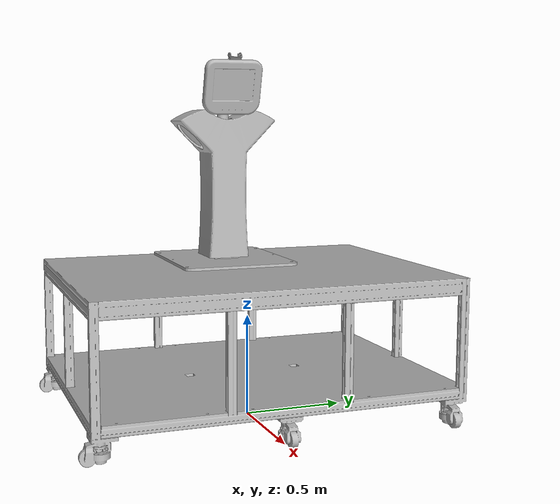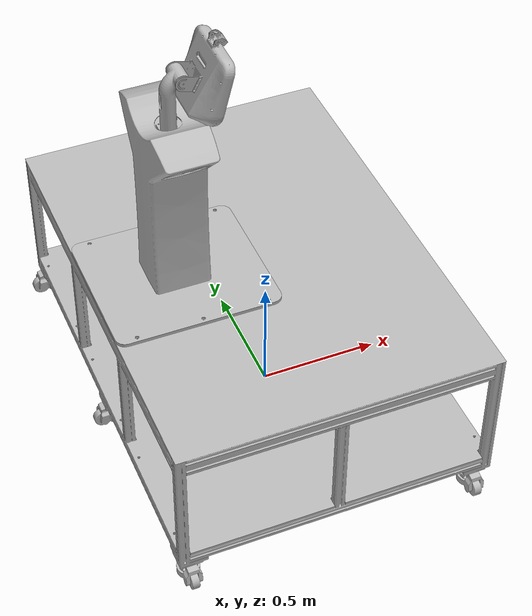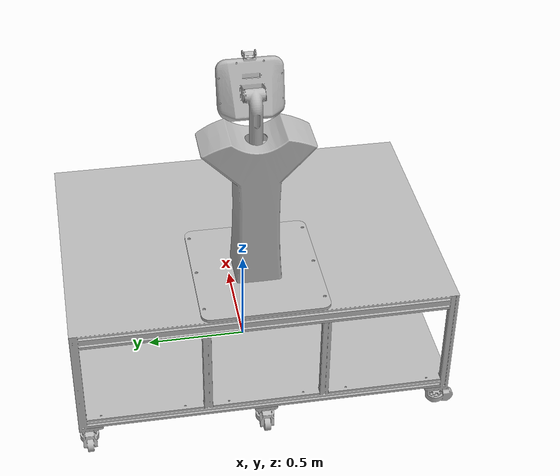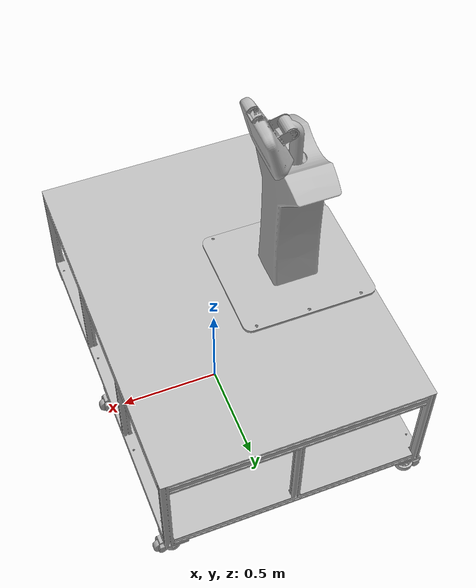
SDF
<?xml version='1.0'?>
<sdf version='1.7'>
  <model name='body_desk'>
    <link name='desk_base_link'>
      <pose>0 0 0.73 0 -0 0</pose>
      <inertial>
        <pose>-0.120088 -0.00042 -0.315867 0 -0 0</pose>
        <mass>68.9459</mass>
        <inertia>
          <ixx>11.1845</ixx>
          <ixy>0.00172194</ixy>
          <ixz>2.35614</ixz>
          <iyy>14.915</iyy>
          <iyz>-0.00513017</iyz>
          <izz>10.2778</izz>
        </inertia>
      </inertial>
      <self_collide>0</self_collide>
      <enable_wind>0</enable_wind>
      <kinematic>0</kinematic>
      <visual name='desk_base_link_visual'>
        <pose>0 0 0 0 -0 0</pose>
        <geometry>
          <mesh>
            <scale>1 1 1</scale>
            <uri>/media/jt/Extreme SSD/Github/Dual_robot_real/src/dual_description/meshes/desk/desk_base_link.STL</uri>
          </mesh>
        </geometry>
        <material>
          <shader type='pixel'/>
        </material>
        <transparency>0</transparency>
        <cast_shadows>1</cast_shadows>
      </visual>
      <visual name='desk_base_link_fixed_joint_lump__desk_mount_link_visual_1'>
        <pose>-0.380102 0 0.014 0 -0 0</pose>
        <geometry>
          <mesh>
            <scale>1 1 1</scale>
            <uri>/media/jt/Extreme SSD/Github/Dual_robot_real/src/dual_description/meshes/desk/desk_mount_link.STL</uri>
          </mesh>
        </geometry>
        <material>
          <shader type='pixel'/>
        </material>
        <transparency>0</transparency>
        <cast_shadows>1</cast_shadows>
      </visual>
      <visual name='desk_base_link_fixed_joint_lump__body_base_link_visual_2'>
        <pose>-0.380102 0 0.014 0 -0 0</pose>
        <geometry>
          <mesh>
            <scale>1 1 1</scale>
            <uri>/media/jt/Extreme SSD/Github/Dual_robot_real/src/dual_description/meshes/body/body_base_link.STL</uri>
          </mesh>
        </geometry>
        <material>
          <shader type='pixel'/>
        </material>
        <transparency>0</transparency>
        <cast_shadows>1</cast_shadows>
      </visual>
      <visual name='desk_base_link_fixed_joint_lump__base_top_link_visual_3'>
        <pose>-0.335102 0 0.932859 0 0.25 0</pose>
        <geometry>
          <mesh>
            <scale>1 1 1</scale>
            <uri>/media/jt/Extreme SSD/Github/Dual_robot_real/src/dual_description/meshes/body/base_top_link.STL</uri>
          </mesh>
        </geometry>
        <material>
          <shader type='pixel'/>
        </material>
        <transparency>0</transparency>
        <cast_shadows>1</cast_shadows>
      </visual>
      <visual name='desk_base_link_fixed_joint_lump__body_case_link_visual_5'>
        <pose>-0.380102 0 0.026 1.57 -0 1.57</pose>
        <geometry>
          <mesh>
            <scale>1 1 1</scale>
            <uri>/media/jt/Extreme SSD/Github/Dual_robot_real/src/dual_description/meshes/body/body_case_link.STL</uri>
          </mesh>
        </geometry>
        <material>
          <shader type='pixel'/>
        </material>
        <transparency>0</transparency>
        <cast_shadows>1</cast_shadows>
      </visual>
      <visual name='desk_base_link_fixed_joint_lump__top_camera_link_visual_4'>
        <pose>-0.198811 0 1.05777 -3.14159 0.9 0</pose>
        <geometry>
          <mesh>
            <scale>1 1 1</scale>
            <uri>/media/jt/Extreme SSD/Github/Dual_robot_real/src/dual_description/meshes/body/top_camera_link.STL</uri>
          </mesh>
        </geometry>
        <material>
          <shader type='pixel'/>
        </material>
        <transparency>0</transparency>
        <cast_shadows>1</cast_shadows>
      </visual>
      <collision name='desk_base_link_collision'>
        <laser_retro>0</laser_retro>
        <max_contacts>10</max_contacts>
        <pose>0 0 0 0 -0 0</pose>
        <geometry>
          <mesh>
            <uri>/media/jt/Extreme SSD/Github/Dual_robot_real/src/dual_description/meshes/desk/desk_base_link.STL</uri>
            <scale>1 1 1</scale>
          </mesh>
        </geometry>
        <surface>
          <friction>
            <ode>
              <mu>1</mu>
              <mu2>1</mu2>
              <fdir1>0 0 0</fdir1>
              <slip1>0</slip1>
              <slip2>0</slip2>
            </ode>
            <torsional>
              <coefficient>1</coefficient>
              <patch_radius>0</patch_radius>
              <surface_radius>0</surface_radius>
              <use_patch_radius>1</use_patch_radius>
              <ode>
                <slip>0</slip>
              </ode>
            </torsional>
          </friction>
          <bounce>
            <restitution_coefficient>0</restitution_coefficient>
            <threshold>1e+06</threshold>
          </bounce>
          <contact>
            <collide_without_contact>0</collide_without_contact>
            <collide_without_contact_bitmask>1</collide_without_contact_bitmask>
            <collide_bitmask>1</collide_bitmask>
            <ode>
              <soft_cfm>0</soft_cfm>
              <soft_erp>0.2</soft_erp>
              <kp>1e+13</kp>
              <kd>1</kd>
              <max_vel>0.01</max_vel>
              <min_depth>0</min_depth>
            </ode>
            <bullet>
              <split_impulse>1</split_impulse>
              <split_impulse_penetration_threshold>-0.01</split_impulse_penetration_threshold>
              <soft_cfm>0</soft_cfm>
              <soft_erp>0.2</soft_erp>
              <kp>1e+13</kp>
              <kd>1</kd>
            </bullet>
          </contact>
        </surface>
      </collision>
      <collision name='desk_base_link_fixed_joint_lump__desk_mount_link_collision_1'>
        <laser_retro>0</laser_retro>
        <max_contacts>10</max_contacts>
        <pose>-0.380102 0 0.014 0 -0 0</pose>
        <geometry>
          <mesh>
            <uri>/media/jt/Extreme SSD/Github/Dual_robot_real/src/dual_description/meshes/desk/desk_mount_link.STL</uri>
            <scale>1 1 1</scale>
          </mesh>
        </geometry>
        <surface>
          <friction>
            <ode>
              <mu>1</mu>
              <mu2>1</mu2>
              <fdir1>0 0 0</fdir1>
              <slip1>0</slip1>
              <slip2>0</slip2>
            </ode>
            <torsional>
              <coefficient>1</coefficient>
              <patch_radius>0</patch_radius>
              <surface_radius>0</surface_radius>
              <use_patch_radius>1</use_patch_radius>
              <ode>
                <slip>0</slip>
              </ode>
            </torsional>
          </friction>
          <bounce>
            <restitution_coefficient>0</restitution_coefficient>
            <threshold>1e+06</threshold>
          </bounce>
          <contact>
            <collide_without_contact>0</collide_without_contact>
            <collide_without_contact_bitmask>1</collide_without_contact_bitmask>
            <collide_bitmask>1</collide_bitmask>
            <ode>
              <soft_cfm>0</soft_cfm>
              <soft_erp>0.2</soft_erp>
              <kp>1e+13</kp>
              <kd>1</kd>
              <max_vel>0.01</max_vel>
              <min_depth>0</min_depth>
            </ode>
            <bullet>
              <split_impulse>1</split_impulse>
              <split_impulse_penetration_threshold>-0.01</split_impulse_penetration_threshold>
              <soft_cfm>0</soft_cfm>
              <soft_erp>0.2</soft_erp>
              <kp>1e+13</kp>
              <kd>1</kd>
            </bullet>
          </contact>
        </surface>
      </collision>
      <collision name='desk_base_link_fixed_joint_lump__body_base_link_collision_2'>
        <laser_retro>0</laser_retro>
        <max_contacts>10</max_contacts>
        <pose>-0.380102 0 0.014 0 -0 0</pose>
        <geometry>
          <mesh>
            <uri>/media/jt/Extreme SSD/Github/Dual_robot_real/src/dual_description/meshes/body/body_base_link.STL</uri>
            <scale>1 1 1</scale>
          </mesh>
        </geometry>
        <surface>
          <friction>
            <ode>
              <mu>1</mu>
              <mu2>1</mu2>
              <fdir1>0 0 0</fdir1>
              <slip1>0</slip1>
              <slip2>0</slip2>
            </ode>
            <torsional>
              <coefficient>1</coefficient>
              <patch_radius>0</patch_radius>
              <surface_radius>0</surface_radius>
              <use_patch_radius>1</use_patch_radius>
              <ode>
                <slip>0</slip>
              </ode>
            </torsional>
          </friction>
          <bounce>
            <restitution_coefficient>0</restitution_coefficient>
            <threshold>1e+06</threshold>
          </bounce>
          <contact>
            <collide_without_contact>0</collide_without_contact>
            <collide_without_contact_bitmask>1</collide_without_contact_bitmask>
            <collide_bitmask>1</collide_bitmask>
            <ode>
              <soft_cfm>0</soft_cfm>
              <soft_erp>0.2</soft_erp>
              <kp>1e+13</kp>
              <kd>1</kd>
              <max_vel>0.01</max_vel>
              <min_depth>0</min_depth>
            </ode>
            <bullet>
              <split_impulse>1</split_impulse>
              <split_impulse_penetration_threshold>-0.01</split_impulse_penetration_threshold>
              <soft_cfm>0</soft_cfm>
              <soft_erp>0.2</soft_erp>
              <kp>1e+13</kp>
              <kd>1</kd>
            </bullet>
          </contact>
        </surface>
      </collision>
      <collision name='desk_base_link_fixed_joint_lump__base_top_link_collision_3'>
        <laser_retro>0</laser_retro>
        <max_contacts>10</max_contacts>
        <pose>-0.335102 0 0.932859 0 0.25 0</pose>
        <geometry>
          <mesh>
            <uri>/media/jt/Extreme SSD/Github/Dual_robot_real/src/dual_description/meshes/body/base_top_link.STL</uri>
            <scale>1 1 1</scale>
          </mesh>
        </geometry>
        <surface>
          <friction>
            <ode>
              <mu>1</mu>
              <mu2>1</mu2>
              <fdir1>0 0 0</fdir1>
              <slip1>0</slip1>
              <slip2>0</slip2>
            </ode>
            <torsional>
              <coefficient>1</coefficient>
              <patch_radius>0</patch_radius>
              <surface_radius>0</surface_radius>
              <use_patch_radius>1</use_patch_radius>
              <ode>
                <slip>0</slip>
              </ode>
            </torsional>
          </friction>
          <bounce>
            <restitution_coefficient>0</restitution_coefficient>
            <threshold>1e+06</threshold>
          </bounce>
          <contact>
            <collide_without_contact>0</collide_without_contact>
            <collide_without_contact_bitmask>1</collide_without_contact_bitmask>
            <collide_bitmask>1</collide_bitmask>
            <ode>
              <soft_cfm>0</soft_cfm>
              <soft_erp>0.2</soft_erp>
              <kp>1e+13</kp>
              <kd>1</kd>
              <max_vel>0.01</max_vel>
              <min_depth>0</min_depth>
            </ode>
            <bullet>
              <split_impulse>1</split_impulse>
              <split_impulse_penetration_threshold>-0.01</split_impulse_penetration_threshold>
              <soft_cfm>0</soft_cfm>
              <soft_erp>0.2</soft_erp>
              <kp>1e+13</kp>
              <kd>1</kd>
            </bullet>
          </contact>
        </surface>
      </collision>
      <collision name='desk_base_link_fixed_joint_lump__body_case_link_collision_5'>
        <laser_retro>0</laser_retro>
        <max_contacts>10</max_contacts>
        <pose>-0.380102 0 0.026 1.57 -0 1.57</pose>
        <geometry>
          <mesh>
            <uri>/media/jt/Extreme SSD/Github/Dual_robot_real/src/dual_description/meshes/body/body_case_link.STL</uri>
            <scale>1 1 1</scale>
          </mesh>
        </geometry>
        <surface>
          <friction>
            <ode>
              <mu>1</mu>
              <mu2>1</mu2>
              <fdir1>0 0 0</fdir1>
              <slip1>0</slip1>
              <slip2>0</slip2>
            </ode>
            <torsional>
              <coefficient>1</coefficient>
              <patch_radius>0</patch_radius>
              <surface_radius>0</surface_radius>
              <use_patch_radius>1</use_patch_radius>
              <ode>
                <slip>0</slip>
              </ode>
            </torsional>
          </friction>
          <bounce>
            <restitution_coefficient>0</restitution_coefficient>
            <threshold>1e+06</threshold>
          </bounce>
          <contact>
            <collide_without_contact>0</collide_without_contact>
            <collide_without_contact_bitmask>1</collide_without_contact_bitmask>
            <collide_bitmask>1</collide_bitmask>
            <ode>
              <soft_cfm>0</soft_cfm>
              <soft_erp>0.2</soft_erp>
              <kp>1e+13</kp>
              <kd>1</kd>
              <max_vel>0.01</max_vel>
              <min_depth>0</min_depth>
            </ode>
            <bullet>
              <split_impulse>1</split_impulse>
              <split_impulse_penetration_threshold>-0.01</split_impulse_penetration_threshold>
              <soft_cfm>0</soft_cfm>
              <soft_erp>0.2</soft_erp>
              <kp>1e+13</kp>
              <kd>1</kd>
            </bullet>
          </contact>
        </surface>
      </collision>
      <collision name='desk_base_link_fixed_joint_lump__top_camera_link_collision_4'>
        <laser_retro>0</laser_retro>
        <max_contacts>10</max_contacts>
        <pose>-0.198811 0 1.05777 -3.14159 0.9 0</pose>
        <geometry>
          <mesh>
            <uri>/media/jt/Extreme SSD/Github/Dual_robot_real/src/dual_description/meshes/body/top_camera_link.STL</uri>
            <scale>1 1 1</scale>
          </mesh>
        </geometry>
        <surface>
          <friction>
            <ode>
              <mu>1</mu>
              <mu2>1</mu2>
              <fdir1>0 0 0</fdir1>
              <slip1>0</slip1>
              <slip2>0</slip2>
            </ode>
            <torsional>
              <coefficient>1</coefficient>
              <patch_radius>0</patch_radius>
              <surface_radius>0</surface_radius>
              <use_patch_radius>1</use_patch_radius>
              <ode>
                <slip>0</slip>
              </ode>
            </torsional>
          </friction>
          <bounce>
            <restitution_coefficient>0</restitution_coefficient>
            <threshold>1e+06</threshold>
          </bounce>
          <contact>
            <collide_without_contact>0</collide_without_contact>
            <collide_without_contact_bitmask>1</collide_without_contact_bitmask>
            <collide_bitmask>1</collide_bitmask>
            <ode>
              <soft_cfm>0</soft_cfm>
              <soft_erp>0.2</soft_erp>
              <kp>1e+13</kp>
              <kd>1</kd>
              <max_vel>0.01</max_vel>
              <min_depth>0</min_depth>
            </ode>
            <bullet>
              <split_impulse>1</split_impulse>
              <split_impulse_penetration_threshold>-0.01</split_impulse_penetration_threshold>
              <soft_cfm>0</soft_cfm>
              <soft_erp>0.2</soft_erp>
              <kp>1e+13</kp>
              <kd>1</kd>
            </bullet>
          </contact>
        </surface>
      </collision>
    </link>
    <static>1</static>
    <allow_auto_disable>1</allow_auto_disable>
  </model>
</sdf>
